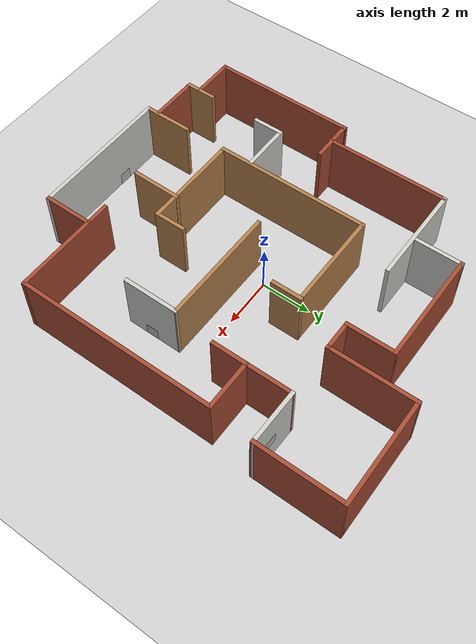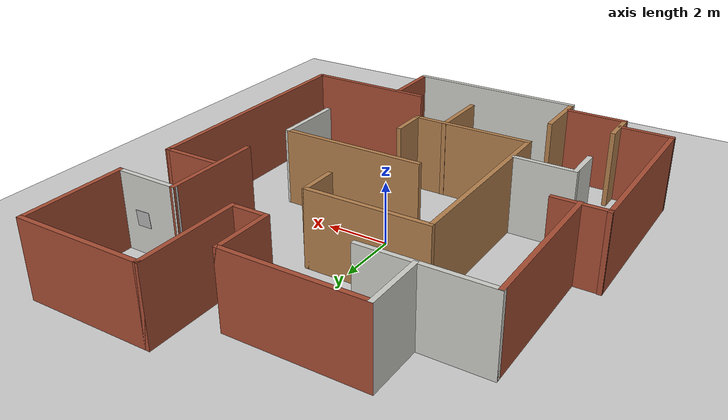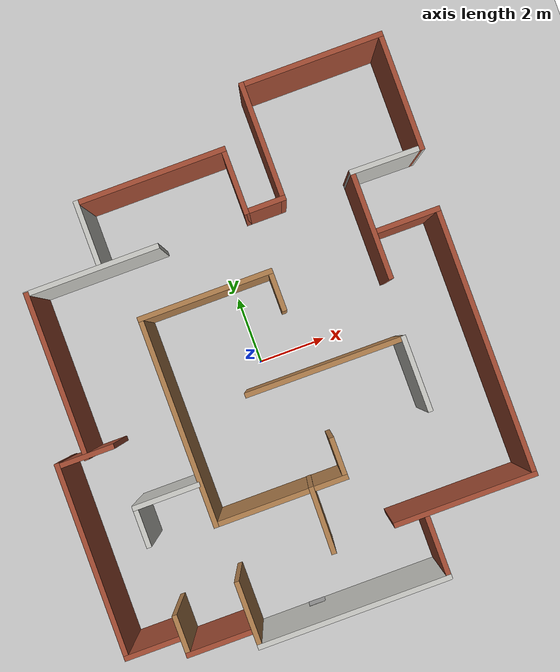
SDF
<sdf version="1.6">
 <world name="default">
  <plugin name="gazebo_ros_state" filename="libgazebo_ros_state.so">
   <ros><namespace>/gazebo</namespace></ros>
   <update_rate>1.0</update_rate>
  </plugin>
  <light name="sun" type="directional">
   <pose>0 0 10 0 -0 0</pose>
   <diffuse>0.8 0.8 0.8 1</diffuse>
   <specular>0.2 0.2 0.2 1</specular>
   <attenuation>
    <range>1000</range>
    <constant>0.9</constant>
    <linear>0.01</linear>
    <quadratic>0.001</quadratic>
   </attenuation>
   <direction>-0.5 0.1 -0.9</direction>
  </light>
  <model name="ground_plane">
   <static>1</static>
   <link name="link">
    <collision name="collision">
     <geometry><plane><normal>0 0 1</normal><size>100 100</size></plane></geometry>
     <surface>
      <contact><collide_bitmask>65535</collide_bitmask></contact>
      <friction><ode><mu>100</mu><mu2>50</mu2></ode></friction>
     </surface>
    </collision>
    <visual name="visual">
     <cast_shadows>0</cast_shadows>
     <geometry><plane><normal>0 0 1</normal><size>100 100</size></plane></geometry>
     <material>
      <script><uri>file://media/materials/scripts/gazebo.material</uri><name>Gazebo/Grey</name></script>
     </material>
    </visual>
   </link>
  </model>
  <gravity>0 0 -9.8</gravity>
  <magnetic_field>6e-06 2.3e-05 -4.2e-05</magnetic_field>
  <atmosphere type="adiabatic"/>
  <physics name="default_physics" default="0" type="ode">
   <max_step_size>0.001</max_step_size>
   <real_time_factor>1</real_time_factor>
   <real_time_update_rate>1000</real_time_update_rate>
  </physics>
  <scene><ambient>0.4 0.4 0.4 1</ambient><background>0.7 0.7 0.7 1</background><shadows>1</shadows></scene>
  <audio><device>default</device></audio>
  <spherical_coordinates>
   <surface_model>EARTH_WGS84</surface_model>
   <latitude_deg>0</latitude_deg>
   <longitude_deg>0</longitude_deg>
   <elevation>0</elevation>
   <heading_deg>0</heading_deg>
  </spherical_coordinates>
  <model name="dat160_w3">
   <link name="Wall_100">
    <collision name="Wall_100_Collision">
     <geometry><box><size>2.25 0.15 2.5</size></box></geometry>
     <pose>0 0 1.25 0 -0 0</pose>
    </collision>
    <visual name="Wall_100_Visual">
     <pose>0 0 1.25 0 -0 0</pose>
     <geometry><box><size>2.25 0.15 2.5</size></box></geometry>
     <material>
      <script><uri>file://media/materials/scripts/gazebo.material</uri><name>Gazebo/CeilingTiled</name></script>
      <ambient>1 1 1 1</ambient>
     </material>
     <meta><layer>0</layer></meta>
    </visual>
    <pose>3.9989 -1.79135 0 0 -0 -1.5708</pose>
   </link>
   <link name="Wall_102">
    <collision name="Wall_102_Collision">
     <geometry><box><size>1.97359 0.15 2.5</size></box></geometry>
     <pose>0 0 1.25 0 -0 0</pose>
    </collision>
    <visual name="Wall_102_Visual">
     <pose>0 0 1.25 0 -0 0</pose>
     <geometry><box><size>1.97359 0.15 2.5</size></box></geometry>
     <material>
      <script><uri>file://media/materials/scripts/gazebo.material</uri><name>Gazebo/Wood</name></script>
      <ambient>1 1 1 1</ambient>
     </material>
     <meta><layer>0</layer></meta>
    </visual>
    <pose>0.133556 -4.7191 0 0 -0 -1.58538</pose>
   </link>
   <link name="Wall_107">
    <collision name="Wall_107_Collision">
     <geometry><box><size>4.25 0.15 2.5</size></box></geometry>
     <pose>0 0 1.25 0 -0 0</pose>
    </collision>
    <visual name="Wall_107_Visual">
     <pose>0 0 1.25 0 -0 0</pose>
     <geometry><box><size>4.25 0.15 2.5</size></box></geometry>
     <material>
      <script><uri>file://media/materials/scripts/gazebo.material</uri><name>Gazebo/Bricks</name></script>
      <ambient>1 1 1 1</ambient>
     </material>
     <meta><layer>0</layer></meta>
    </visual>
    <pose>4.06989 -5.53935 0 0 -0 3.14159</pose>
   </link>
   <link name="Wall_11">
    <collision name="Wall_11_Collision">
     <geometry><box><size>4.77349 0.15 2.5</size></box></geometry>
     <pose>0 0 1.25 0 -0 0</pose>
    </collision>
    <visual name="Wall_11_Visual">
     <pose>0 0 1.25 0 -0 0</pose>
     <geometry><box><size>4.77349 0.15 2.5</size></box></geometry>
     <material>
      <script><uri>file://media/materials/scripts/gazebo.material</uri><name>Gazebo/Wood</name></script>
      <ambient>1 1 1 1</ambient>
     </material>
     <meta><layer>0</layer></meta>
    </visual>
    <pose>1.68718 -0.731562 0 0 -0 -0.004233</pose>
   </link>
   <link name="Wall_110">
    <collision name="Wall_110_Collision">
     <geometry><box><size>5.75 0.15 2.5</size></box></geometry>
     <pose>0 0 1.25 0 -0 0</pose>
    </collision>
    <visual name="Wall_110_Visual">
     <pose>0 0 1.25 0 -0 0</pose>
     <geometry><box><size>5.75 0.15 2.5</size></box></geometry>
     <material>
      <script><uri>file://media/materials/scripts/gazebo.material</uri><name>Gazebo/CeilingTiled</name></script>
      <ambient>1 1 1 1</ambient>
     </material>
     <meta><layer>0</layer></meta>
    </visual>
    <pose>0.100635 -7.41595 0 0 -0 0</pose>
   </link>
   <link name="Wall_111">
    <collision name="Wall_111_Collision">
     <geometry><box><size>2 0.15 2.5</size></box></geometry>
     <pose>0 0 1.25 0 -0 0</pose>
    </collision>
    <visual name="Wall_111_Visual">
     <pose>0 0 1.25 0 -0 0</pose>
     <geometry><box><size>2 0.15 2.5</size></box></geometry>
     <material>
      <script><uri>file://media/materials/scripts/gazebo.material</uri><name>Gazebo/Bricks</name></script>
      <ambient>1 1 1 1</ambient>
     </material>
     <meta><layer>0</layer></meta>
    </visual>
    <pose>2.90063 -6.49095 0 0 -0 1.5708</pose>
   </link>
   <link name="Wall_113">
    <collision name="Wall_113_Collision">
     <geometry><box><size>2 0.15 2.5</size></box></geometry>
     <pose>0 0 1.25 0 -0 0</pose>
    </collision>
    <visual name="Wall_113_Visual">
     <pose>0 0 1.25 0 -0 0</pose>
     <geometry><box><size>2 0.15 2.5</size></box></geometry>
     <material>
      <script><uri>file://media/materials/scripts/gazebo.material</uri><name>Gazebo/Wood</name></script>
      <ambient>1 1 1 1</ambient>
     </material>
     <meta><layer>0</layer></meta>
    </visual>
    <pose>-2.69936 -6.49095 0 0 -0 1.5708</pose>
   </link>
   <link name="Wall_115">
    <collision name="Wall_115_Collision">
     <geometry><box><size>2 0.15 2.5</size></box></geometry>
     <pose>0 0 1.25 0 -0 0</pose>
    </collision>
    <visual name="Wall_115_Visual">
     <pose>0 0 1.25 0 -0 0</pose>
     <geometry><box><size>2 0.15 2.5</size></box></geometry>
     <material>
      <script><uri>file://media/materials/scripts/gazebo.material</uri><name>Gazebo/CeilingTiled</name></script>
      <ambient>1 1 1 1</ambient>
     </material>
     <meta><layer>0</layer></meta>
    </visual>
    <pose>-3.72067 -2.59566 0 0 -0 3.14159</pose>
   </link>
   <link name="Wall_117">
    <collision name="Wall_117_Collision">
     <geometry><box><size>2 0.15 2.5</size></box></geometry>
     <pose>0 0 1.25 0 -0 0</pose>
    </collision>
    <visual name="Wall_117_Visual">
     <pose>0 0 1.25 0 -0 0</pose>
     <geometry><box><size>2 0.15 2.5</size></box></geometry>
     <material>
      <script><uri>file://media/materials/scripts/gazebo.material</uri><name>Gazebo/Bricks</name></script>
      <ambient>1 1 1 1</ambient>
     </material>
     <meta><layer>0</layer></meta>
    </visual>
    <pose>-3.72067 -6.94566 0 0 -0 0</pose>
   </link>
   <link name="Wall_119">
    <collision name="Wall_119_Collision">
     <geometry><box><size>1.25 0.15 2.5</size></box></geometry>
     <pose>0 0 1.25 0 -0 0</pose>
    </collision>
    <visual name="Wall_119_Visual">
     <pose>0 0 1.25 0 -0 0</pose>
     <geometry><box><size>1.25 0.15 2.5</size></box></geometry>
     <material>
      <script><uri>file://media/materials/scripts/gazebo.material</uri><name>Gazebo/CeilingTiled</name></script>
      <ambient>1 1 1 1</ambient>
     </material>
     <meta><layer>0</layer></meta>
    </visual>
    <pose>-4.64567 -3.14566 0 0 -0 -1.5708</pose>
   </link>
   <link name="Wall_124">
    <collision name="Wall_124_Collision">
     <geometry><box><size>1.25 0.15 2.5</size></box></geometry>
     <pose>0 0 1.25 0 -0 0</pose>
    </collision>
    <visual name="Wall_124_Visual">
     <pose>0 0 1.25 0 -0 0</pose>
     <geometry><box><size>1.25 0.15 2.5</size></box></geometry>
     <material>
      <script><uri>file://media/materials/scripts/gazebo.material</uri><name>Gazebo/Wood</name></script>
      <ambient>1 1 1 1</ambient>
     </material>
     <meta><layer>0</layer></meta>
    </visual>
    <pose>-4.64567 -6.39566 0 0 -0 1.5708</pose>
   </link>
   <link name="Wall_126">
    <collision name="Wall_126_Collision">
     <geometry><box><size>1.75 0.15 2.5</size></box></geometry>
     <pose>0 0 1.25 0 -0 0</pose>
    </collision>
    <visual name="Wall_126_Visual">
     <pose>0 0 1.25 0 -0 0</pose>
     <geometry><box><size>1.75 0.15 2.5</size></box></geometry>
     <material>
      <script><uri>file://media/materials/scripts/gazebo.material</uri><name>Gazebo/Bricks</name></script>
      <ambient>1 1 1 1</ambient>
     </material>
     <meta><layer>0</layer></meta>
    </visual>
    <pose>-5.49238 -6.43534 0 0 -0 3.14159</pose>
   </link>
   <link name="Wall_127">
    <collision name="Wall_127_Collision">
     <geometry><box><size>5.82831 0.15 2.5</size></box></geometry>
     <pose>0 0 1.25 0 -0 0</pose>
    </collision>
    <visual name="Wall_127_Visual">
     <pose>0 0 1.25 0 -0 0</pose>
     <geometry><box><size>5.82831 0.15 2.5</size></box></geometry>
     <material>
      <script><uri>file://media/materials/scripts/gazebo.material</uri><name>Gazebo/Bricks</name></script>
      <ambient>1 1 1 1</ambient>
     </material>
     <meta><layer>0</layer></meta>
    </visual>
    <pose>-6.28082 -3.59621 0 0 -0 1.56672</pose>
   </link>
   <link name="Wall_128">
    <collision name="Wall_128_Collision">
     <geometry><box><size>1.75 0.15 2.5</size></box></geometry>
     <pose>0 0 1.25 0 -0 0</pose>
    </collision>
    <visual name="Wall_128_Visual">
     <pose>0 0 1.25 0 -0 0</pose>
     <geometry><box><size>1.75 0.15 2.5</size></box></geometry>
     <material>
      <script><uri>file://media/materials/scripts/gazebo.material</uri><name>Gazebo/Bricks</name></script>
      <ambient>1 1 1 1</ambient>
     </material>
     <meta><layer>0</layer></meta>
    </visual>
    <pose>-5.46925 -0.780208 0 0 -0 0</pose>
   </link>
   <link name="Wall_130">
    <collision name="Wall_130_Collision">
     <geometry><box><size>4.96261 0.15 2.5</size></box></geometry>
     <pose>0 0 1.25 0 -0 0</pose>
    </collision>
    <visual name="Wall_130_Visual">
     <pose>0 0 1.25 0 -0 0</pose>
     <geometry><box><size>4.96261 0.15 2.5</size></box></geometry>
     <material>
      <script><uri>file://media/materials/scripts/gazebo.material</uri><name>Gazebo/Bricks</name></script>
      <ambient>1 1 1 1</ambient>
     </material>
     <meta><layer>0</layer></meta>
    </visual>
    <pose>-5.43256 1.5917 0 0 -0 1.5708</pose>
   </link>
   <link name="Wall_131">
    <collision name="Wall_131_Collision">
     <geometry><box><size>4 0.15 2.5</size></box></geometry>
     <pose>0 0 1.25 0 -0 0</pose>
    </collision>
    <visual name="Wall_131_Visual">
     <pose>0 0 1.25 0 -0 0</pose>
     <geometry><box><size>4 0.15 2.5</size></box></geometry>
     <material>
      <script><uri>file://media/materials/scripts/gazebo.material</uri><name>Gazebo/CeilingTiled</name></script>
      <ambient>1 1 1 1</ambient>
     </material>
     <meta><layer>0</layer></meta>
    </visual>
    <pose>-3.50757 4.02114 0 0 -0 0</pose>
   </link>
   <link name="Wall_133">
    <collision name="Wall_133_Collision">
     <geometry><box><size>2 0.15 2.5</size></box></geometry>
     <pose>0 0 1.25 0 -0 0</pose>
    </collision>
    <visual name="Wall_133_Visual">
     <pose>0 0 1.25 0 -0 0</pose>
     <geometry><box><size>2 0.15 2.5</size></box></geometry>
     <material>
      <script><uri>file://media/materials/scripts/gazebo.material</uri><name>Gazebo/CeilingTiled</name></script>
      <ambient>1 1 1 1</ambient>
     </material>
     <meta><layer>0</layer></meta>
    </visual>
    <pose>-3.25829 4.99095 0 0 -0 1.5708</pose>
   </link>
   <link name="Wall_135">
    <collision name="Wall_135_Collision">
     <geometry><box><size>4.5 0.15 2.5</size></box></geometry>
     <pose>0 0 1.25 0 -0 0</pose>
    </collision>
    <visual name="Wall_135_Visual">
     <pose>0 0 1.25 0 -0 0</pose>
     <geometry><box><size>4.5 0.15 2.5</size></box></geometry>
     <material>
      <script><uri>file://media/materials/scripts/gazebo.material</uri><name>Gazebo/Bricks</name></script>
      <ambient>1 1 1 1</ambient>
     </material>
     <meta><layer>0</layer></meta>
    </visual>
    <pose>-1.08329 5.91595 0 0 -0 0</pose>
   </link>
   <link name="Wall_136">
    <collision name="Wall_136_Collision">
     <geometry><box><size>2 0.15 2.5</size></box></geometry>
     <pose>0 0 1.25 0 -0 0</pose>
    </collision>
    <visual name="Wall_136_Visual">
     <pose>0 0 1.25 0 -0 0</pose>
     <geometry><box><size>2 0.15 2.5</size></box></geometry>
     <material>
      <script><uri>file://media/materials/scripts/gazebo.material</uri><name>Gazebo/Bricks</name></script>
      <ambient>1 1 1 1</ambient>
     </material>
     <meta><layer>0</layer></meta>
    </visual>
    <pose>1.09171 4.99095 0 0 -0 -1.5708</pose>
   </link>
   <link name="Wall_137">
    <collision name="Wall_137_Collision">
     <geometry><box><size>1.25 0.15 2.5</size></box></geometry>
     <pose>0 0 1.25 0 -0 0</pose>
    </collision>
    <visual name="Wall_137_Visual">
     <pose>0 0 1.25 0 -0 0</pose>
     <geometry><box><size>1.25 0.15 2.5</size></box></geometry>
     <material>
      <script><uri>file://media/materials/scripts/gazebo.material</uri><name>Gazebo/Bricks</name></script>
      <ambient>1 1 1 1</ambient>
     </material>
     <meta><layer>0</layer></meta>
    </visual>
    <pose>1.64171 4.06595 0 0 -0 0</pose>
   </link>
   <link name="Wall_138">
    <collision name="Wall_138_Collision">
     <geometry><box><size>3.5 0.15 2.5</size></box></geometry>
     <pose>0 0 1.25 0 -0 0</pose>
    </collision>
    <visual name="Wall_138_Visual">
     <pose>0 0 1.25 0 -0 0</pose>
     <geometry><box><size>3.5 0.15 2.5</size></box></geometry>
     <material>
      <script><uri>file://media/materials/scripts/gazebo.material</uri><name>Gazebo/Bricks</name></script>
      <ambient>1 1 1 1</ambient>
     </material>
     <meta><layer>0</layer></meta>
    </visual>
    <pose>2.19171 5.74095 0 0 -0 1.5708</pose>
   </link>
   <link name="Wall_139">
    <collision name="Wall_139_Collision">
     <geometry><box><size>4.25 0.15 2.5</size></box></geometry>
     <pose>0 0 1.25 0 -0 0</pose>
    </collision>
    <visual name="Wall_139_Visual">
     <pose>0 0 1.25 0 -0 0</pose>
     <geometry><box><size>4.25 0.15 2.5</size></box></geometry>
     <material>
      <script><uri>file://media/materials/scripts/gazebo.material</uri><name>Gazebo/Bricks</name></script>
      <ambient>1 1 1 1</ambient>
     </material>
     <meta><layer>0</layer></meta>
    </visual>
    <pose>4.24171 7.41595 0 0 -0 0</pose>
   </link>
   <link name="Wall_140">
    <collision name="Wall_140_Collision">
     <geometry><box><size>3.5 0.15 2.5</size></box></geometry>
     <pose>0 0 1.25 0 -0 0</pose>
    </collision>
    <visual name="Wall_140_Visual">
     <pose>0 0 1.25 0 -0 0</pose>
     <geometry><box><size>3.5 0.15 2.5</size></box></geometry>
     <material>
      <script><uri>file://media/materials/scripts/gazebo.material</uri><name>Gazebo/Bricks</name></script>
      <ambient>1 1 1 1</ambient>
     </material>
     <meta><layer>0</layer></meta>
    </visual>
    <pose>6.29171 5.74095 0 0 -0 -1.5708</pose>
   </link>
   <link name="Wall_141">
    <collision name="Wall_141_Collision">
     <geometry><box><size>2.20197 0.15 2.5</size></box></geometry>
     <pose>0 0 1.25 0 -0 0</pose>
    </collision>
    <visual name="Wall_141_Visual">
     <pose>0 0 1.25 0 -0 0</pose>
     <geometry><box><size>2.20197 0.15 2.5</size></box></geometry>
     <material>
      <script><uri>file://media/materials/scripts/gazebo.material</uri><name>Gazebo/CeilingTiled</name></script>
      <ambient>1 1 1 1</ambient>
     </material>
     <meta><layer>0</layer></meta>
    </visual>
    <pose>5.26581 4.07941 0 0 -0 3.12848</pose>
   </link>
   <link name="Wall_3">
    <collision name="Wall_3_Collision">
     <geometry><box><size>4 0.15 2.5</size></box></geometry>
     <pose>0 0 1.25 0 -0 0</pose>
    </collision>
    <visual name="Wall_3_Visual">
     <pose>0 0 1.25 0 -0 0</pose>
     <geometry><box><size>4 0.15 2.5</size></box></geometry>
     <material>
      <script><uri>file://media/materials/scripts/gazebo.material</uri><name>Gazebo/Wood</name></script>
      <ambient>1 1 1 1</ambient>
     </material>
     <meta><layer>0</layer></meta>
    </visual>
    <pose>-0.774365 2.28405 0 0 -0 0</pose>
   </link>
   <link name="Wall_5">
    <collision name="Wall_5_Collision">
     <geometry><box><size>6.25 0.15 2.5</size></box></geometry>
     <pose>0 0 1.25 0 -0 0</pose>
    </collision>
    <visual name="Wall_5_Visual">
     <pose>0 0 1.25 0 -0 0</pose>
     <geometry><box><size>6.25 0.15 2.5</size></box></geometry>
     <material>
      <script><uri>file://media/materials/scripts/gazebo.material</uri><name>Gazebo/Wood</name></script>
      <ambient>1 1 1 1</ambient>
     </material>
     <meta><layer>0</layer></meta>
    </visual>
    <pose>-2.69936 -0.765954 0 0 -0 -1.5708</pose>
   </link>
   <link name="Wall_6">
    <collision name="Wall_6_Collision">
     <geometry><box><size>4 0.15 2.5</size></box></geometry>
     <pose>0 0 1.25 0 -0 0</pose>
    </collision>
    <visual name="Wall_6_Visual">
     <pose>0 0 1.25 0 -0 0</pose>
     <geometry><box><size>4 0.15 2.5</size></box></geometry>
     <material>
      <script><uri>file://media/materials/scripts/gazebo.material</uri><name>Gazebo/Wood</name></script>
      <ambient>1 1 1 1</ambient>
     </material>
     <meta><layer>0</layer></meta>
    </visual>
    <pose>-0.774365 -3.81595 0 0 -0 0</pose>
   </link>
   <link name="Wall_7">
    <collision name="Wall_7_Collision">
     <geometry><box><size>1.25 0.15 2.5</size></box></geometry>
     <pose>0 0 1.25 0 -0 0</pose>
    </collision>
    <visual name="Wall_7_Visual">
     <pose>0 0 1.25 0 -0 0</pose>
     <geometry><box><size>1.25 0.15 2.5</size></box></geometry>
     <material>
      <script><uri>file://media/materials/scripts/gazebo.material</uri><name>Gazebo/Wood</name></script>
      <ambient>1 1 1 1</ambient>
     </material>
     <meta><layer>0</layer></meta>
    </visual>
    <pose>1.15064 -3.26595 0 0 -0 1.5708</pose>
   </link>
   <link name="Wall_9">
    <collision name="Wall_9_Collision">
     <geometry><box><size>1.25 0.15 2.5</size></box></geometry>
     <pose>0 0 1.25 0 -0 0</pose>
    </collision>
    <visual name="Wall_9_Visual">
     <pose>0 0 1.25 0 -0 0</pose>
     <geometry><box><size>1.25 0.15 2.5</size></box></geometry>
     <material>
      <script><uri>file://media/materials/scripts/gazebo.material</uri><name>Gazebo/Wood</name></script>
      <ambient>1 1 1 1</ambient>
     </material>
     <meta><layer>0</layer></meta>
    </visual>
    <pose>1.15064 1.73405 0 0 -0 -1.5708</pose>
   </link>
   <link name="Wall_95">
    <collision name="Wall_95_Collision">
     <geometry><box><size>3.25 0.15 2.5</size></box></geometry>
     <pose>0 0 1.25 0 -0 0</pose>
    </collision>
    <visual name="Wall_95_Visual">
     <pose>0 0 1.25 0 -0 0</pose>
     <geometry><box><size>3.25 0.15 2.5</size></box></geometry>
     <material>
      <script><uri>file://media/materials/scripts/gazebo.material</uri><name>Gazebo/Bricks</name></script>
      <ambient>1 1 1 1</ambient>
     </material>
     <meta><layer>0</layer></meta>
    </visual>
    <pose>4.23992 2.54286 0 0 -0 -1.5708</pose>
   </link>
   <link name="Wall_97">
    <collision name="Wall_97_Collision">
     <geometry><box><size>2 0.15 2.5</size></box></geometry>
     <pose>0 0 1.25 0 -0 0</pose>
    </collision>
    <visual name="Wall_97_Visual">
     <pose>0 0 1.25 0 -0 0</pose>
     <geometry><box><size>2 0.15 2.5</size></box></geometry>
     <material>
      <script><uri>file://media/materials/scripts/gazebo.material</uri><name>Gazebo/Bricks</name></script>
      <ambient>1 1 1 1</ambient>
     </material>
     <meta><layer>0</layer></meta>
    </visual>
    <pose>5.19489 2.31065 0 0 -0 0</pose>
   </link>
   <link name="Wall_98">
    <collision name="Wall_98_Collision">
     <geometry><box><size>8 0.15 2.5</size></box></geometry>
     <pose>0 0 1.25 0 -0 0</pose>
    </collision>
    <visual name="Wall_98_Visual">
     <pose>0 0 1.25 0 -0 0</pose>
     <geometry><box><size>8 0.15 2.5</size></box></geometry>
     <material>
      <script><uri>file://media/materials/scripts/gazebo.material</uri><name>Gazebo/Bricks</name></script>
      <ambient>1 1 1 1</ambient>
     </material>
     <meta><layer>0</layer></meta>
    </visual>
    <pose>6.11989 -1.61435 0 0 -0 -1.5708</pose>
   </link>
   <static>1</static>
  </model>
  <model name="Baby">
   <static>1</static>
   <link name="link">
    <visual name="visual"><geometry><mesh><uri>model://baby/meshes/Baby.dae</uri></mesh></geometry></visual>
   </link>
   <pose>5.48719 4.18585 1.42096 3.1022 -0.041083 -1.58152</pose>
  </model>
  <model name="Marker3">
   <static>1</static>
   <link name="link">
    <visual name="visual"><geometry><mesh><uri>model://marker3/meshes/Marker3.dae</uri></mesh></geometry></visual>
   </link>
   <pose>-0.901477 -7.33963 0 0 -0 1.55834</pose>
  </model>
  <model name="Marker4">
   <static>1</static>
   <link name="link">
    <visual name="visual"><geometry><mesh><uri>model://marker4/meshes/Marker4.dae</uri></mesh></geometry></visual>
   </link>
   <pose>4.0719 -1.86786 0 0 -0 0</pose>
  </model>
  <light name="user_point_light_0" type="point">
   <pose>5.38766 5.29105 1 0 -0 0</pose>
   <diffuse>0.5 0.5 0.5 1</diffuse>
   <specular>0.1 0.1 0.1 1</specular>
   <attenuation>
    <range>20</range>
    <constant>0.5</constant>
    <linear>0.01</linear>
    <quadratic>0.001</quadratic>
   </attenuation>
   <cast_shadows>0</cast_shadows>
   <direction>0 0 -1</direction>
  </light>
  <light name="user_point_light_1" type="point">
   <pose>-2.23335 4.9398 1 0 -0 0</pose>
   <diffuse>0.5 0.5 0.5 1</diffuse>
   <specular>0.1 0.1 0.1 1</specular>
   <attenuation>
    <range>20</range>
    <constant>0.5</constant>
    <linear>0.01</linear>
    <quadratic>0.001</quadratic>
   </attenuation>
   <cast_shadows>0</cast_shadows>
   <direction>0 0 -1</direction>
  </light>
  <light name="user_point_light_2" type="point">
   <pose>5.15259 -1.93443 1 0 -0 0</pose>
   <diffuse>0.5 0.5 0.5 1</diffuse>
   <specular>0.1 0.1 0.1 1</specular>
   <attenuation>
    <range>20</range>
    <constant>0.5</constant>
    <linear>0.01</linear>
    <quadratic>0.001</quadratic>
   </attenuation>
   <cast_shadows>0</cast_shadows>
   <direction>0 0 -1</direction>
  </light>
  <light name="user_point_light_3" type="point">
   <pose>-0.979219 -5.96708 1 0 -0 0</pose>
   <diffuse>0.5 0.5 0.5 1</diffuse>
   <specular>0.1 0.1 0.1 1</specular>
   <attenuation>
    <range>20</range>
    <constant>0.5</constant>
    <linear>0.01</linear>
    <quadratic>0.001</quadratic>
   </attenuation>
   <cast_shadows>0</cast_shadows>
   <direction>0 0 -1</direction>
  </light>
  <light name="user_point_light_4" type="point">
   <pose>-3.30199 -3.23495 1 0 -0 0</pose>
   <diffuse>0.5 0.5 0.5 1</diffuse>
   <specular>0.1 0.1 0.1 1</specular>
   <attenuation>
    <range>20</range>
    <constant>0.5</constant>
    <linear>0.01</linear>
    <quadratic>0.001</quadratic>
   </attenuation>
   <cast_shadows>0</cast_shadows>
   <direction>0 0 -1</direction>
  </light>
 </world>
</sdf>
